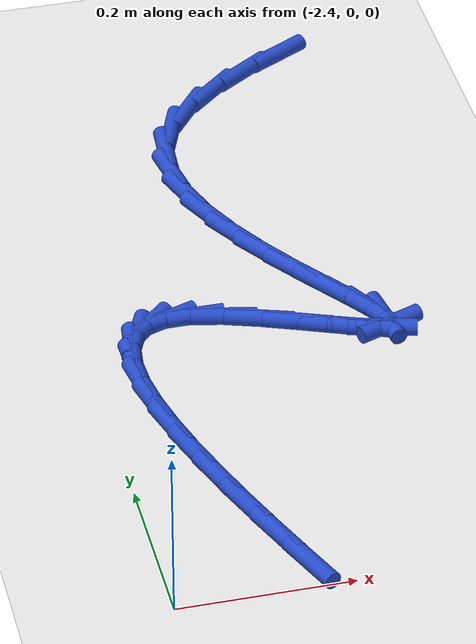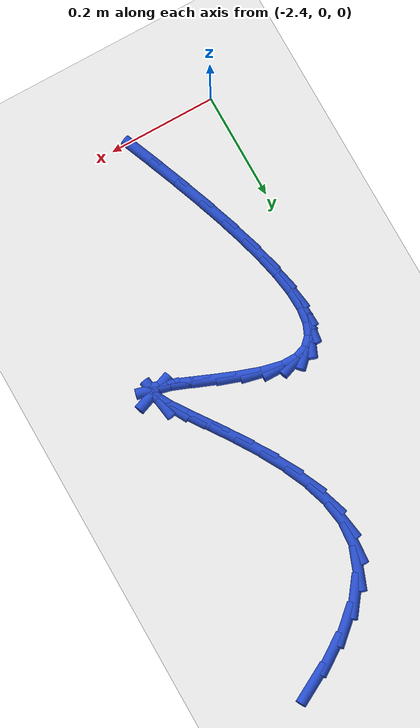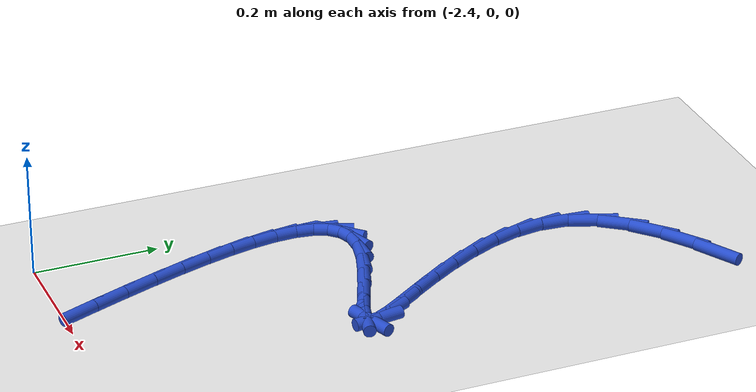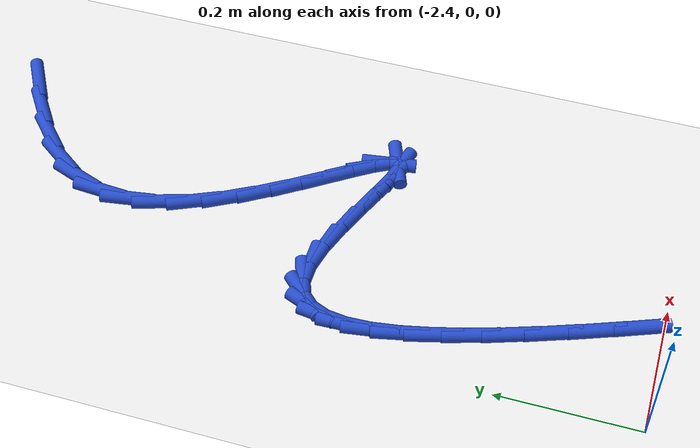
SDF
<sdf version="1.6">
 <world name="default">
  <model name="ground_plane">
   <static>1</static>
   <link name="link">
    <collision name="collision">
     <geometry><plane><normal>0 0 1</normal><size>100 100</size></plane></geometry>
     <surface><friction><ode><mu>100</mu><mu2>50</mu2></ode></friction></surface>
    </collision>
    <visual name="visual">
     <cast_shadows>0</cast_shadows>
     <geometry><plane><normal>0 0 1</normal><size>100 100</size></plane></geometry>
     <material>
      <script><uri>file://media/materials/scripts/gazebo.material</uri><name>Gazebo/WhiteGlow</name></script>
     </material>
    </visual>
   </link>
  </model>
  <model name="line">
   <link name="link_107">
    <pose>-2.044515223341557 0.9972046525838781 0.01 0 1.57 0.5082268248094299</pose>
    <collision name="collision">
     <geometry><cylinder><radius>0.01</radius><length>0.08</length></cylinder></geometry>
    </collision>
    <visual name="visual">
     <material>
      <script><name>Gazebo/Blue</name><uri>file://media/materials/scripts/gazebo.material</uri></script>
     </material>
     <geometry><cylinder><radius>0.01</radius><length>0.08</length></cylinder></geometry>
    </visual>
   </link>
   <link name="link_108">
    <pose>-2.0964674973937063 0.968265518924493 0.01 0 1.57 0.6055954942135447</pose>
    <collision name="collision">
     <geometry><cylinder><radius>0.01</radius><length>0.08</length></cylinder></geometry>
    </collision>
    <visual name="visual">
     <material>
      <script><name>Gazebo/Blue</name><uri>file://media/materials/scripts/gazebo.material</uri></script>
     </material>
     <geometry><cylinder><radius>0.01</radius><length>0.08</length></cylinder></geometry>
    </visual>
   </link>
   <link name="link_109">
    <pose>-2.143031357250401 0.9360254991529496 0.01 0 1.57 0.7424814641861478</pose>
    <collision name="collision">
     <geometry><cylinder><radius>0.01</radius><length>0.08</length></cylinder></geometry>
    </collision>
    <visual name="visual">
     <material>
      <script><name>Gazebo/Blue</name><uri>file://media/materials/scripts/gazebo.material</uri></script>
     </material>
     <geometry><cylinder><radius>0.01</radius><length>0.08</length></cylinder></geometry>
    </visual>
   </link>
   <link name="link_110">
    <pose>-2.181724417857327 0.9005188036617912 0.01 0 1.57 0.9392040709444618</pose>
    <collision name="collision">
     <geometry><cylinder><radius>0.01</radius><length>0.08</length></cylinder></geometry>
    </collision>
    <visual name="visual">
     <material>
      <script><name>Gazebo/Blue</name><uri>file://media/materials/scripts/gazebo.material</uri></script>
     </material>
     <geometry><cylinder><radius>0.01</radius><length>0.08</length></cylinder></geometry>
    </visual>
   </link>
   <link name="link_111">
    <pose>-2.2100642941601727 0.8617796428435595 0.01 0 1.57 1.2128357135206036</pose>
    <collision name="collision">
     <geometry><cylinder><radius>0.01</radius><length>0.08</length></cylinder></geometry>
    </collision>
    <visual name="visual">
     <material>
      <script><name>Gazebo/Blue</name><uri>file://media/materials/scripts/gazebo.material</uri></script>
     </material>
     <geometry><cylinder><radius>0.01</radius><length>0.08</length></cylinder></geometry>
    </visual>
   </link>
   <link name="link_112">
    <pose>-2.2257383351247113 0.8198789916071845 0.01 0 1.57 1.498612668127571</pose>
    <collision name="collision">
     <geometry><cylinder><radius>0.01</radius><length>0.08</length></cylinder></geometry>
    </collision>
    <visual name="visual">
     <material>
      <script><name>Gazebo/Blue</name><uri>file://media/materials/scripts/gazebo.material</uri></script>
     </material>
     <geometry><cylinder><radius>0.01</radius><length>0.08</length></cylinder></geometry>
    </visual>
   </link>
   <link name="link_113">
    <pose>-2.228952172527899 0.7754332868122039 0.01 0 1.57 -1.4172375993137996</pose>
    <collision name="collision">
     <geometry><cylinder><radius>0.01</radius><length>0.08</length></cylinder></geometry>
    </collision>
    <visual name="visual">
     <material>
      <script><name>Gazebo/Blue</name><uri>file://media/materials/scripts/gazebo.material</uri></script>
     </material>
     <geometry><cylinder><radius>0.01</radius><length>0.08</length></cylinder></geometry>
    </visual>
   </link>
   <link name="link_114">
    <pose>-2.221839109448279 0.7294765003716545 0.01 0 1.57 -1.253253353548259</pose>
    <collision name="collision">
     <geometry><cylinder><radius>0.01</radius><length>0.08</length></cylinder></geometry>
    </collision>
    <visual name="visual">
     <material>
      <script><name>Gazebo/Blue</name><uri>file://media/materials/scripts/gazebo.material</uri></script>
     </material>
     <geometry><cylinder><radius>0.01</radius><length>0.08</length></cylinder></geometry>
    </visual>
   </link>
   <link name="link_115">
    <pose>-2.2065814093939946 0.6830532090644416 0.01 0 1.57 -1.1372968464916935</pose>
    <collision name="collision">
     <geometry><cylinder><radius>0.01</radius><length>0.08</length></cylinder></geometry>
    </collision>
    <visual name="visual">
     <material>
      <script><name>Gazebo/Blue</name><uri>file://media/materials/scripts/gazebo.material</uri></script>
     </material>
     <geometry><cylinder><radius>0.01</radius><length>0.08</length></cylinder></geometry>
    </visual>
   </link>
   <link name="link_116">
    <pose>-2.185361335873191 0.6372079896694719 0.01 0 1.57 -1.0562624572234511</pose>
    <collision name="collision">
     <geometry><cylinder><radius>0.01</radius><length>0.08</length></cylinder></geometry>
    </collision>
    <visual name="visual">
     <material>
      <script><name>Gazebo/Blue</name><uri>file://media/materials/scripts/gazebo.material</uri></script>
     </material>
     <geometry><cylinder><radius>0.01</radius><length>0.08</length></cylinder></geometry>
    </visual>
   </link>
   <link name="link_117">
    <pose>-2.1603611523940107 0.5929854189656512 0.01 0 1.57 -1.0014385971978383</pose>
    <collision name="collision">
     <geometry><cylinder><radius>0.01</radius><length>0.08</length></cylinder></geometry>
    </collision>
    <visual name="visual">
     <material>
      <script><name>Gazebo/Blue</name><uri>file://media/materials/scripts/gazebo.material</uri></script>
     </material>
     <geometry><cylinder><radius>0.01</radius><length>0.08</length></cylinder></geometry>
    </visual>
   </link>
   <link name="link_118">
    <pose>-2.1337631224645977 0.5514300737318841 0.01 0 1.57 -0.9685775805967665</pose>
    <collision name="collision">
     <geometry><cylinder><radius>0.01</radius><length>0.08</length></cylinder></geometry>
    </collision>
    <visual name="visual">
     <material>
      <script><name>Gazebo/Blue</name><uri>file://media/materials/scripts/gazebo.material</uri></script>
     </material>
     <geometry><cylinder><radius>0.01</radius><length>0.08</length></cylinder></geometry>
    </visual>
   </link>
   <link name="link_119">
    <pose>-2.1077495095930945 0.513586530747077 0.01 0 1.57 -0.9583297339620813</pose>
    <collision name="collision">
     <geometry><cylinder><radius>0.01</radius><length>0.08</length></cylinder></geometry>
    </collision>
    <visual name="visual">
     <material>
      <script><name>Gazebo/Blue</name><uri>file://media/materials/scripts/gazebo.material</uri></script>
     </material>
     <geometry><cylinder><radius>0.01</radius><length>0.08</length></cylinder></geometry>
    </visual>
   </link>
   <link name="link_120">
    <pose>-2.084502577287645 0.4804993667901356 0.01 0 1.57 -0.9800792013870975</pose>
    <collision name="collision">
     <geometry><cylinder><radius>0.01</radius><length>0.08</length></cylinder></geometry>
    </collision>
    <visual name="visual">
     <material>
      <script><name>Gazebo/Blue</name><uri>file://media/materials/scripts/gazebo.material</uri></script>
     </material>
     <geometry><cylinder><radius>0.01</radius><length>0.08</length></cylinder></geometry>
    </visual>
   </link>
   <link name="link_121">
    <pose>-2.066204589056394 0.45321315863996603 0.01 0 1.57 -1.0707967527777589</pose>
    <collision name="collision">
     <geometry><cylinder><radius>0.01</radius><length>0.08</length></cylinder></geometry>
    </collision>
    <visual name="visual">
     <material>
      <script><name>Gazebo/Blue</name><uri>file://media/materials/scripts/gazebo.material</uri></script>
     </material>
     <geometry><cylinder><radius>0.01</radius><length>0.08</length></cylinder></geometry>
    </visual>
   </link>
   <link name="link_122">
    <pose>-2.0550378084074827 0.43277248307547334 0.01 0 1.57 -1.4241884213421876</pose>
    <collision name="collision">
     <geometry><cylinder><radius>0.01</radius><length>0.08</length></cylinder></geometry>
    </collision>
    <visual name="visual">
     <material>
      <script><name>Gazebo/Blue</name><uri>file://media/materials/scripts/gazebo.material</uri></script>
     </material>
     <geometry><cylinder><radius>0.01</radius><length>0.08</length></cylinder></geometry>
    </visual>
   </link>
   <link name="link_123">
    <pose>-2.0531844988490566 0.4202219168755637 0.01 0 1.57 0.3588449803261675</pose>
    <collision name="collision">
     <geometry><cylinder><radius>0.01</radius><length>0.08</length></cylinder></geometry>
    </collision>
    <visual name="visual">
     <material>
      <script><name>Gazebo/Blue</name><uri>file://media/materials/scripts/gazebo.material</uri></script>
     </material>
     <geometry><cylinder><radius>0.01</radius><length>0.08</length></cylinder></geometry>
    </visual>
   </link>
   <link name="link_124">
    <pose>-2.0628261537378103 0.41660547904373263 0.01 0 1.57 -0.24296095410816632</pose>
    <collision name="collision">
     <geometry><cylinder><radius>0.01</radius><length>0.08</length></cylinder></geometry>
    </collision>
    <visual name="visual">
     <material>
      <script><name>Gazebo/Blue</name><uri>file://media/materials/scripts/gazebo.material</uri></script>
     </material>
     <geometry><cylinder><radius>0.01</radius><length>0.08</length></cylinder></geometry>
    </visual>
   </link>
   <link name="link_125">
    <pose>-2.084922256361965 0.42208215854357256 0.01 0 1.57 -0.3620944623249233</pose>
    <collision name="collision">
     <geometry><cylinder><radius>0.01</radius><length>0.08</length></cylinder></geometry>
    </collision>
    <visual name="visual">
     <material>
      <script><name>Gazebo/Blue</name><uri>file://media/materials/scripts/gazebo.material</uri></script>
     </material>
     <geometry><cylinder><radius>0.01</radius><length>0.08</length></cylinder></geometry>
    </visual>
   </link>
   <link name="link_126">
    <pose>-2.11673350127524 0.43413212914251165 0.01 0 1.57 -0.3886850747413884</pose>
    <collision name="collision">
     <geometry><cylinder><radius>0.01</radius><length>0.08</length></cylinder></geometry>
    </collision>
    <visual name="visual">
     <material>
      <script><name>Gazebo/Blue</name><uri>file://media/materials/scripts/gazebo.material</uri></script>
     </material>
     <geometry><cylinder><radius>0.01</radius><length>0.08</length></cylinder></geometry>
    </visual>
   </link>
   <link name="link_127">
    <pose>-2.15482345335557 0.4497306745741783 0.01 0 1.57 -0.37521982054410835</pose>
    <collision name="collision">
     <geometry><cylinder><radius>0.01</radius><length>0.08</length></cylinder></geometry>
    </collision>
    <visual name="visual">
     <material>
      <script><name>Gazebo/Blue</name><uri>file://media/materials/scripts/gazebo.material</uri></script>
     </material>
     <geometry><cylinder><radius>0.01</radius><length>0.08</length></cylinder></geometry>
    </visual>
   </link>
   <link name="link_128">
    <pose>-2.195755677480891 0.465853078572201 0.01 0 1.57 -0.3256616644932483</pose>
    <collision name="collision">
     <geometry><cylinder><radius>0.01</radius><length>0.08</length></cylinder></geometry>
    </collision>
    <visual name="visual">
     <material>
      <script><name>Gazebo/Blue</name><uri>file://media/materials/scripts/gazebo.material</uri></script>
     </material>
     <geometry><cylinder><radius>0.01</radius><length>0.08</length></cylinder></geometry>
    </visual>
   </link>
   <link name="link_129">
    <pose>-2.23609373852914 0.4794746248702081 0.01 0 1.57 -0.21939447039048046</pose>
    <collision name="collision">
     <geometry><cylinder><radius>0.01</radius><length>0.08</length></cylinder></geometry>
    </collision>
    <visual name="visual">
     <material>
      <script><name>Gazebo/Blue</name><uri>file://media/materials/scripts/gazebo.material</uri></script>
     </material>
     <geometry><cylinder><radius>0.01</radius><length>0.08</length></cylinder></geometry>
    </visual>
   </link>
   <link name="link_130">
    <pose>-2.2724012013782517 0.48757059720182805 0.01 0 1.57 -0.0020095954690300317</pose>
    <collision name="collision">
     <geometry><cylinder><radius>0.01</radius><length>0.08</length></cylinder></geometry>
    </collision>
    <visual name="visual">
     <material>
      <script><name>Gazebo/Blue</name><uri>file://media/materials/scripts/gazebo.material</uri></script>
     </material>
     <geometry><cylinder><radius>0.01</radius><length>0.08</length></cylinder></geometry>
    </visual>
   </link>
   <link name="link_131">
    <pose>-2.301799060970916 0.48762967508679284 0.01 0 1.57 0.34824492458947875</pose>
    <collision name="collision">
     <geometry><cylinder><radius>0.01</radius><length>0.08</length></cylinder></geometry>
    </collision>
    <visual name="visual">
     <material>
      <script><name>Gazebo/Blue</name><uri>file://media/materials/scripts/gazebo.material</uri></script>
     </material>
     <geometry><cylinder><radius>0.01</radius><length>0.08</length></cylinder></geometry>
    </visual>
   </link>
   <link name="link_132">
    <pose>-2.324032968187756 0.47955785885997376 0.01 0 1.57 0.7853501638795304</pose>
    <collision name="collision">
     <geometry><cylinder><radius>0.01</radius><length>0.08</length></cylinder></geometry>
    </collision>
    <visual name="visual">
     <material>
      <script><name>Gazebo/Blue</name><uri>file://media/materials/scripts/gazebo.material</uri></script>
     </material>
     <geometry><cylinder><radius>0.01</radius><length>0.08</length></cylinder></geometry>
    </visual>
   </link>
   <link name="link_133">
    <pose>-2.3396203577986636 0.4639719655516194 0.01 0 1.57 1.1725813741291031</pose>
    <collision name="collision">
     <geometry><cylinder><radius>0.01</radius><length>0.08</length></cylinder></geometry>
    </collision>
    <visual name="visual">
     <material>
      <script><name>Gazebo/Blue</name><uri>file://media/materials/scripts/gazebo.material</uri></script>
     </material>
     <geometry><cylinder><radius>0.01</radius><length>0.08</length></cylinder></geometry>
    </visual>
   </link>
   <link name="link_134">
    <pose>-2.349078769879762 0.4414889091795298 0.01 0 1.57 1.4378394405465045</pose>
    <collision name="collision">
     <geometry><cylinder><radius>0.01</radius><length>0.08</length></cylinder></geometry>
    </collision>
    <visual name="visual">
     <material>
      <script><name>Gazebo/Blue</name><uri>file://media/materials/scripts/gazebo.material</uri></script>
     </material>
     <geometry><cylinder><radius>0.01</radius><length>0.08</length></cylinder></geometry>
    </visual>
   </link>
   <link name="link_135">
    <pose>-2.35292574450718 0.41272560376150697 0.01 0 1.57 -1.5345924481367046</pose>
    <collision name="collision">
     <geometry><cylinder><radius>0.01</radius><length>0.08</length></cylinder></geometry>
    </collision>
    <visual name="visual">
     <material>
      <script><name>Gazebo/Blue</name><uri>file://media/materials/scripts/gazebo.material</uri></script>
     </material>
     <geometry><cylinder><radius>0.01</radius><length>0.08</length></cylinder></geometry>
    </visual>
   </link>
   <link name="link_136">
    <pose>-2.3516788217570403 0.37829896331535157 0.01 0 1.57 -1.4243273784449297</pose>
    <collision name="collision">
     <geometry><cylinder><radius>0.01</radius><length>0.08</length></cylinder></geometry>
    </collision>
    <visual name="visual">
     <material>
      <script><name>Gazebo/Blue</name><uri>file://media/materials/scripts/gazebo.material</uri></script>
     </material>
     <geometry><cylinder><radius>0.01</radius><length>0.08</length></cylinder></geometry>
    </visual>
   </link>
   <link name="link_137">
    <pose>-2.345855541705469 0.3388259018588649 0.01 0 1.57 -1.3493947454729716</pose>
    <collision name="collision">
     <geometry><cylinder><radius>0.01</radius><length>0.08</length></cylinder></geometry>
    </collision>
    <visual name="visual">
     <material>
      <script><name>Gazebo/Blue</name><uri>file://media/materials/scripts/gazebo.material</uri></script>
     </material>
     <geometry><cylinder><radius>0.01</radius><length>0.08</length></cylinder></geometry>
    </visual>
   </link>
   <link name="link_138">
    <pose>-2.3359734444285944 0.29492333340984805 0.01 0 1.57 -1.2965611879152843</pose>
    <collision name="collision">
     <geometry><cylinder><radius>0.01</radius><length>0.08</length></cylinder></geometry>
    </collision>
    <visual name="visual">
     <material>
      <script><name>Gazebo/Blue</name><uri>file://media/materials/scripts/gazebo.material</uri></script>
     </material>
     <geometry><cylinder><radius>0.01</radius><length>0.08</length></cylinder></geometry>
    </visual>
   </link>
   <link name="link_139">
    <pose>-2.3225500700025394 0.2472081719861021 0.01 0 1.57 -1.2583226624962893</pose>
    <collision name="collision">
     <geometry><cylinder><radius>0.01</radius><length>0.08</length></cylinder></geometry>
    </collision>
    <visual name="visual">
     <material>
      <script><name>Gazebo/Blue</name><uri>file://media/materials/scripts/gazebo.material</uri></script>
     </material>
     <geometry><cylinder><radius>0.01</radius><length>0.08</length></cylinder></geometry>
    </visual>
   </link>
   <link name="link_140">
    <pose>-2.3061029585034314 0.19629733160542895 0.01 0 1.57 -1.2302636748368505</pose>
    <collision name="collision">
     <geometry><cylinder><radius>0.01</radius><length>0.08</length></cylinder></geometry>
    </collision>
    <visual name="visual">
     <material>
      <script><name>Gazebo/Blue</name><uri>file://media/materials/scripts/gazebo.material</uri></script>
     </material>
     <geometry><cylinder><radius>0.01</radius><length>0.08</length></cylinder></geometry>
    </visual>
   </link>
   <link name="link_141">
    <pose>-2.2871496500073953 0.14280772628562832 0.01 0 1.57 -1.2096929849490892</pose>
    <collision name="collision">
     <geometry><cylinder><radius>0.01</radius><length>0.08</length></cylinder></geometry>
    </collision>
    <visual name="visual">
     <material>
      <script><name>Gazebo/Blue</name><uri>file://media/materials/scripts/gazebo.material</uri></script>
     </material>
     <geometry><cylinder><radius>0.01</radius><length>0.08</length></cylinder></geometry>
    </visual>
   </link>
   <link name="link_142">
    <pose>-2.2662076845905568 0.087356270044502 0.01 0 1.57 -1.1949351024497463</pose>
    <collision name="collision">
     <geometry><cylinder><radius>0.01</radius><length>0.08</length></cylinder></geometry>
    </collision>
    <visual name="visual">
     <material>
      <script><name>Gazebo/Blue</name><uri>file://media/materials/scripts/gazebo.material</uri></script>
     </material>
     <geometry><cylinder><radius>0.01</radius><length>0.08</length></cylinder></geometry>
    </visual>
   </link>
   <link name="link_143">
    <pose>-2.243794602329042 0.030559876899851127 0.01 0 1.57 -1.1849529754430521</pose>
    <collision name="collision">
     <geometry><cylinder><radius>0.01</radius><length>0.08</length></cylinder></geometry>
    </collision>
    <visual name="visual">
     <material>
      <script><name>Gazebo/Blue</name><uri>file://media/materials/scripts/gazebo.material</uri></script>
     </material>
     <geometry><cylinder><radius>0.01</radius><length>0.08</length></cylinder></geometry>
    </visual>
   </link>
  </model>
 </world>
</sdf>
